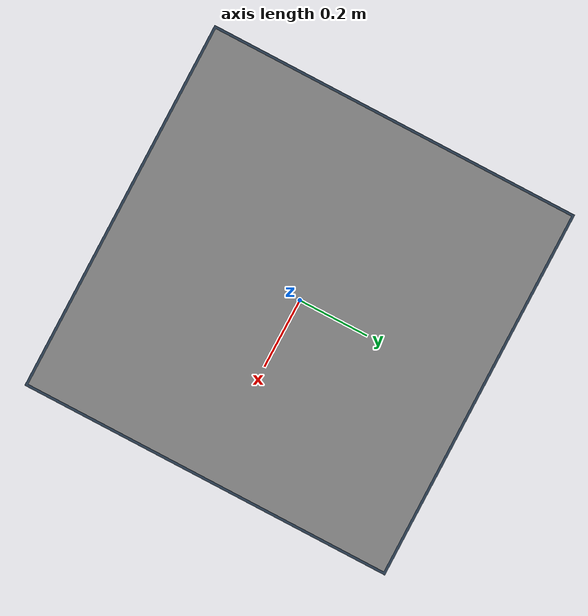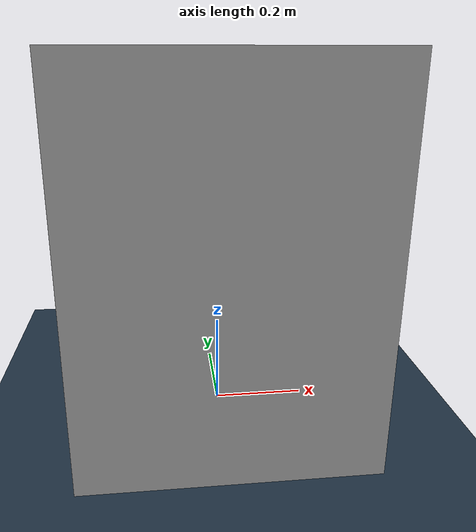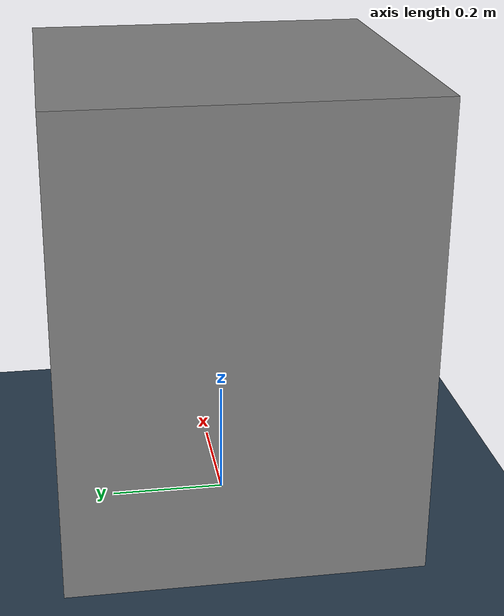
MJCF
<mujoco model="table_arena">
    <asset>
        <texture builtin="gradient" height="256" rgb1=".9 .9 1." rgb2=".2 .3 .4" type="skybox" width="256"/>
        <texture builtin="checker" height="512" name="texplane" rgb1=".2 .3 .4" rgb2=".1 0.15 0.2" type="2d" width="512"/>
        <material name="floorplane" reflectance="0.5" texrepeat="1 1" texture="texplane" texuniform="true"/>
        <texture builtin="checker" height="512" name="texplane2" rgb1=".6 .6 .6" rgb2=".2 0.2 0.2" type="2d" width="512"/>
        <material name="tableplane" reflectance="1.0" texrepeat="10 10" texture="texplane2" texuniform="true"/>
        <texture file="../textures/light-wood.png" type="2d" name="tex-light-wood"/>
        <material name="light-wood" reflectance="0.5" texrepeat="20 20" texture="tex-light-wood" texuniform="true"/>
    </asset>

    <worldbody>
        <geom condim="3" material="floorplane" name="FLOOR" pos="0 0 0" size="3 3 .125" type="plane"/>
        <body name="TABLE" pos="0 0 0.4">
            <geom pos="0 0 0" size="0.3 0.3 0.4" type="box" name="TABLE_collision" friction="1 0.005 0.0001"/>
            <geom pos="0 0 0" size="0.3 0.3 0.4" type="box" conaffinity="0" contype="0" group="1" name="TABLE_visual" material="tableplane"/>
            <site pos="0 0 0.4" name="TABLE_top" size="0.001 0.001 0.001" rgba="0 0 0 0"/>
        </body>

        <light diffuse=".8 .8 .8" dir="0 -.15 -1" directional="false" pos="1 1 4.0" specular="0.3 0.3 0.3" castshadow="false"/>
        <light diffuse=".8 .8 .8" dir="0 -.15 -1" directional="false" pos="-3. -3. 4.0" specular="0.3 0.3 0.3" castshadow="false"/>

        <!-- front view -->
        <camera mode="fixed" name="frontview" pos="0 -1.2 0.9" quat="0.86 0.51 0. 0." fovy="60"/>
        <camera mode="fixed" name="view0" pos="1.0 0.41 1.8" quat="0.65 0.27 0.27 0.65"/>
        <camera mode="fixed" name="view1" pos="0.7 0.9 2.1" quat="0.65 0.27 0.27 0.65"/>
        <camera mode="fixed" name="view2" pos="0.8 0.0 1.1" quat="0.612 0.354 0.354 0.612"/>
        <camera mode="fixed" name="view3" pos="1.6 0.0 1" quat="0.433 0.433 0.250 0.750"/>
        <camera mode="fixed" name="view4" pos="0.0 3.0 1" quat="0.433 0.433 0.250 0.750"/>
        <camera mode="fixed" name="view5" pos="1.6 0.0 1" quat="0.433 0.433 0.250 0.750"/>
        <!-- bird view -->
        <camera mode="fixed" name="birdview" pos="-0.2 0 3.0" quat="0.7071 0 0 0.7071"/>
        <!-- agent view -->
        <camera mode="fixed" name="agentview" pos="0.5 0 1.35" quat="0.653 0.271 0.271 0.653"/>
    </worldbody>
</mujoco>
